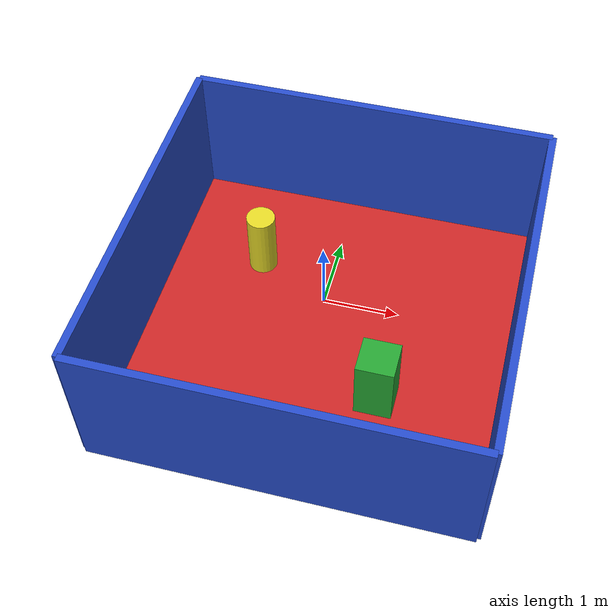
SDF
<?xml version='1.0'?>
<sdf version='1.7'>
  <model name='gazebo'>
    <link name='link_0'>
      <inertial>
        <mass>0</mass>
        <inertia>
          <ixx>0</ixx>
          <ixy>0</ixy>
          <ixz>0</ixz>
          <iyy>0</iyy>
          <iyz>0</iyz>
          <izz>0</izz>
        </inertia>
        <pose>0 0 0 0 -0 0</pose>
      </inertial>
      <pose>0.042857 -0.014286 -0.692857 0 -0 0</pose>
      <gravity>0</gravity>
      <self_collide>0</self_collide>
      <kinematic>0</kinematic>
      <enable_wind>0</enable_wind>
      <visual name='visual'>
        <pose>0 0 0 0 -0 0</pose>
        <geometry>
          <box>
            <size>5 5 0.05</size>
          </box>
        </geometry>
        <material>
          <lighting>0</lighting>
          <script>
            <uri>file://media/materials/scripts/gazebo.material</uri>
            <name>Gazebo/Red</name>
          </script>
          <shader type='pixel'>
            <normal_map>__default__</normal_map>
          </shader>
          <ambient>0.3 0.3 0.3 1</ambient>
          <diffuse>0.7 0.7 0.7 1</diffuse>
          <specular>0.01 0.01 0.01 1</specular>
          <emissive>0 0 0 1</emissive>
        </material>
        <transparency>0</transparency>
        <cast_shadows>1</cast_shadows>
      </visual>
      <collision name='collision'>
        <laser_retro>0</laser_retro>
        <max_contacts>10</max_contacts>
        <pose>0 0 0 0 -0 0</pose>
        <geometry>
          <box>
            <size>5 5 0.05</size>
          </box>
        </geometry>
        <surface>
          <friction>
            <ode>
              <mu>1</mu>
              <mu2>1</mu2>
              <fdir1>0 0 0</fdir1>
              <slip1>0</slip1>
              <slip2>0</slip2>
            </ode>
            <torsional>
              <coefficient>1</coefficient>
              <patch_radius>0</patch_radius>
              <surface_radius>0</surface_radius>
              <use_patch_radius>1</use_patch_radius>
              <ode>
                <slip>0</slip>
              </ode>
            </torsional>
          </friction>
          <bounce>
            <restitution_coefficient>0</restitution_coefficient>
            <threshold>1e+06</threshold>
          </bounce>
          <contact>
            <collide_without_contact>0</collide_without_contact>
            <collide_without_contact_bitmask>1</collide_without_contact_bitmask>
            <collide_bitmask>1</collide_bitmask>
            <ode>
              <soft_cfm>0</soft_cfm>
              <soft_erp>0.2</soft_erp>
              <kp>1e+13</kp>
              <kd>1</kd>
              <max_vel>0.01</max_vel>
              <min_depth>0</min_depth>
            </ode>
            <bullet>
              <split_impulse>1</split_impulse>
              <split_impulse_penetration_threshold>-0.01</split_impulse_penetration_threshold>
              <soft_cfm>0</soft_cfm>
              <soft_erp>0.2</soft_erp>
              <kp>1e+13</kp>
              <kd>1</kd>
            </bullet>
          </contact>
        </surface>
      </collision>
    </link>
    <link name='link_0_clone'>
      <inertial>
        <mass>0</mass>
        <inertia>
          <ixx>0</ixx>
          <ixy>0</ixy>
          <ixz>0</ixz>
          <iyy>0</iyy>
          <iyz>0</iyz>
          <izz>0</izz>
        </inertia>
        <pose>0 0 0 0 -0 0</pose>
      </inertial>
      <pose>0.042857 2.48571 0.282143 0 -0 0</pose>
      <gravity>0</gravity>
      <self_collide>0</self_collide>
      <kinematic>0</kinematic>
      <enable_wind>0</enable_wind>
      <visual name='visual'>
        <pose>0 0 0 0 -0 0</pose>
        <geometry>
          <box>
            <size>5 0.1 2</size>
          </box>
        </geometry>
        <material>
          <lighting>1</lighting>
          <script>
            <uri>file://media/materials/scripts/gazebo.material</uri>
            <name>Gazebo/Blue</name>
          </script>
          <shader type='pixel'>
            <normal_map>__default__</normal_map>
          </shader>
          <ambient>0.3 0.3 0.3 1</ambient>
          <diffuse>0.7 0.7 0.7 1</diffuse>
          <specular>0.01 0.01 0.01 1</specular>
          <emissive>0 0 0 1</emissive>
        </material>
        <transparency>0</transparency>
        <cast_shadows>1</cast_shadows>
      </visual>
      <collision name='collision'>
        <laser_retro>0</laser_retro>
        <max_contacts>10</max_contacts>
        <pose>0 0 0 0 -0 0</pose>
        <geometry>
          <box>
            <size>5 0.1 2</size>
          </box>
        </geometry>
        <surface>
          <friction>
            <ode>
              <mu>1</mu>
              <mu2>1</mu2>
              <fdir1>0 0 0</fdir1>
              <slip1>0</slip1>
              <slip2>0</slip2>
            </ode>
            <torsional>
              <coefficient>1</coefficient>
              <patch_radius>0</patch_radius>
              <surface_radius>0</surface_radius>
              <use_patch_radius>1</use_patch_radius>
              <ode>
                <slip>0</slip>
              </ode>
            </torsional>
          </friction>
          <bounce>
            <restitution_coefficient>0</restitution_coefficient>
            <threshold>1e+06</threshold>
          </bounce>
          <contact>
            <collide_without_contact>0</collide_without_contact>
            <collide_without_contact_bitmask>1</collide_without_contact_bitmask>
            <collide_bitmask>1</collide_bitmask>
            <ode>
              <soft_cfm>0</soft_cfm>
              <soft_erp>0.2</soft_erp>
              <kp>1e+13</kp>
              <kd>1</kd>
              <max_vel>0.01</max_vel>
              <min_depth>0</min_depth>
            </ode>
            <bullet>
              <split_impulse>1</split_impulse>
              <split_impulse_penetration_threshold>-0.01</split_impulse_penetration_threshold>
              <soft_cfm>0</soft_cfm>
              <soft_erp>0.2</soft_erp>
              <kp>1e+13</kp>
              <kd>1</kd>
            </bullet>
          </contact>
        </surface>
      </collision>
    </link>
    <link name='link_0_clone_clone'>
      <inertial>
        <mass>0</mass>
        <inertia>
          <ixx>0</ixx>
          <ixy>0</ixy>
          <ixz>0</ixz>
          <iyy>0</iyy>
          <iyz>0</iyz>
          <izz>0</izz>
        </inertia>
        <pose>0 0 0 0 -0 0</pose>
      </inertial>
      <pose>0.042857 -2.51429 0.282143 0 -0 0</pose>
      <gravity>1</gravity>
      <self_collide>0</self_collide>
      <kinematic>0</kinematic>
      <enable_wind>0</enable_wind>
      <visual name='visual'>
        <pose>0 0 0 0 -0 0</pose>
        <geometry>
          <box>
            <size>5 0.1 2</size>
          </box>
        </geometry>
        <material>
          <lighting>1</lighting>
          <script>
            <uri>file://media/materials/scripts/gazebo.material</uri>
            <name>Gazebo/Blue</name>
          </script>
          <shader type='pixel'>
            <normal_map>__default__</normal_map>
          </shader>
          <ambient>0.3 0.3 0.3 1</ambient>
          <diffuse>0.7 0.7 0.7 1</diffuse>
          <specular>0.01 0.01 0.01 1</specular>
          <emissive>0 0 0 1</emissive>
        </material>
        <transparency>0</transparency>
        <cast_shadows>1</cast_shadows>
      </visual>
      <collision name='collision'>
        <laser_retro>0</laser_retro>
        <max_contacts>10</max_contacts>
        <pose>0 0 0 0 -0 0</pose>
        <geometry>
          <box>
            <size>5 0.1 2</size>
          </box>
        </geometry>
        <surface>
          <friction>
            <ode>
              <mu>1</mu>
              <mu2>1</mu2>
              <fdir1>0 0 0</fdir1>
              <slip1>0</slip1>
              <slip2>0</slip2>
            </ode>
            <torsional>
              <coefficient>1</coefficient>
              <patch_radius>0</patch_radius>
              <surface_radius>0</surface_radius>
              <use_patch_radius>1</use_patch_radius>
              <ode>
                <slip>0</slip>
              </ode>
            </torsional>
          </friction>
          <bounce>
            <restitution_coefficient>0</restitution_coefficient>
            <threshold>1e+06</threshold>
          </bounce>
          <contact>
            <collide_without_contact>0</collide_without_contact>
            <collide_without_contact_bitmask>1</collide_without_contact_bitmask>
            <collide_bitmask>1</collide_bitmask>
            <ode>
              <soft_cfm>0</soft_cfm>
              <soft_erp>0.2</soft_erp>
              <kp>1e+13</kp>
              <kd>1</kd>
              <max_vel>0.01</max_vel>
              <min_depth>0</min_depth>
            </ode>
            <bullet>
              <split_impulse>1</split_impulse>
              <split_impulse_penetration_threshold>-0.01</split_impulse_penetration_threshold>
              <soft_cfm>0</soft_cfm>
              <soft_erp>0.2</soft_erp>
              <kp>1e+13</kp>
              <kd>1</kd>
            </bullet>
          </contact>
        </surface>
      </collision>
    </link>
    <link name='link_0_clone_clone_0'>
      <inertial>
        <mass>0</mass>
        <inertia>
          <ixx>0</ixx>
          <ixy>0</ixy>
          <ixz>0</ixz>
          <iyy>0</iyy>
          <iyz>0</iyz>
          <izz>0</izz>
        </inertia>
        <pose>0 0 0 0 -0 0</pose>
      </inertial>
      <pose>2.54286 -0.014286 0.282143 0 -0 1.57</pose>
      <gravity>1</gravity>
      <self_collide>0</self_collide>
      <kinematic>0</kinematic>
      <enable_wind>0</enable_wind>
      <visual name='visual'>
        <pose>0 0 0 0 -0 0</pose>
        <geometry>
          <box>
            <size>5 0.1 2</size>
          </box>
        </geometry>
        <material>
          <lighting>1</lighting>
          <script>
            <uri>file://media/materials/scripts/gazebo.material</uri>
            <name>Gazebo/Blue</name>
          </script>
          <shader type='pixel'>
            <normal_map>__default__</normal_map>
          </shader>
          <ambient>0.3 0.3 0.3 1</ambient>
          <diffuse>0.7 0.7 0.7 1</diffuse>
          <specular>0.01 0.01 0.01 1</specular>
          <emissive>0 0 0 1</emissive>
        </material>
        <transparency>0</transparency>
        <cast_shadows>1</cast_shadows>
      </visual>
      <collision name='collision'>
        <laser_retro>0</laser_retro>
        <max_contacts>10</max_contacts>
        <pose>0 0 0 0 -0 0</pose>
        <geometry>
          <box>
            <size>5 0.1 2</size>
          </box>
        </geometry>
        <surface>
          <friction>
            <ode>
              <mu>1</mu>
              <mu2>1</mu2>
              <fdir1>0 0 0</fdir1>
              <slip1>0</slip1>
              <slip2>0</slip2>
            </ode>
            <torsional>
              <coefficient>1</coefficient>
              <patch_radius>0</patch_radius>
              <surface_radius>0</surface_radius>
              <use_patch_radius>1</use_patch_radius>
              <ode>
                <slip>0</slip>
              </ode>
            </torsional>
          </friction>
          <bounce>
            <restitution_coefficient>0</restitution_coefficient>
            <threshold>1e+06</threshold>
          </bounce>
          <contact>
            <collide_without_contact>0</collide_without_contact>
            <collide_without_contact_bitmask>1</collide_without_contact_bitmask>
            <collide_bitmask>1</collide_bitmask>
            <ode>
              <soft_cfm>0</soft_cfm>
              <soft_erp>0.2</soft_erp>
              <kp>1e+13</kp>
              <kd>1</kd>
              <max_vel>0.01</max_vel>
              <min_depth>0</min_depth>
            </ode>
            <bullet>
              <split_impulse>1</split_impulse>
              <split_impulse_penetration_threshold>-0.01</split_impulse_penetration_threshold>
              <soft_cfm>0</soft_cfm>
              <soft_erp>0.2</soft_erp>
              <kp>1e+13</kp>
              <kd>1</kd>
            </bullet>
          </contact>
        </surface>
      </collision>
    </link>
    <link name='link_0_clone_clone_0_clone'>
      <inertial>
        <mass>0</mass>
        <inertia>
          <ixx>0</ixx>
          <ixy>0</ixy>
          <ixz>0</ixz>
          <iyy>0</iyy>
          <iyz>0</iyz>
          <izz>0</izz>
        </inertia>
        <pose>0 0 0 0 -0 0</pose>
      </inertial>
      <pose>-2.45714 -0.014286 0.282143 0 -0 1.57</pose>
      <gravity>1</gravity>
      <self_collide>0</self_collide>
      <kinematic>0</kinematic>
      <enable_wind>0</enable_wind>
      <visual name='visual'>
        <pose>0 0 0 0 -0 0</pose>
        <geometry>
          <box>
            <size>5 0.1 2</size>
          </box>
        </geometry>
        <material>
          <lighting>1</lighting>
          <script>
            <uri>file://media/materials/scripts/gazebo.material</uri>
            <name>Gazebo/Blue</name>
          </script>
          <shader type='pixel'>
            <normal_map>__default__</normal_map>
          </shader>
          <ambient>0.3 0.3 0.3 1</ambient>
          <diffuse>0.7 0.7 0.7 1</diffuse>
          <specular>0.01 0.01 0.01 1</specular>
          <emissive>0 0 0 1</emissive>
        </material>
        <transparency>0</transparency>
        <cast_shadows>1</cast_shadows>
      </visual>
      <collision name='collision'>
        <laser_retro>0</laser_retro>
        <max_contacts>10</max_contacts>
        <pose>0 0 0 0 -0 0</pose>
        <geometry>
          <box>
            <size>5 0.1 2</size>
          </box>
        </geometry>
        <surface>
          <friction>
            <ode>
              <mu>1</mu>
              <mu2>1</mu2>
              <fdir1>0 0 0</fdir1>
              <slip1>0</slip1>
              <slip2>0</slip2>
            </ode>
            <torsional>
              <coefficient>1</coefficient>
              <patch_radius>0</patch_radius>
              <surface_radius>0</surface_radius>
              <use_patch_radius>1</use_patch_radius>
              <ode>
                <slip>0</slip>
              </ode>
            </torsional>
          </friction>
          <bounce>
            <restitution_coefficient>0</restitution_coefficient>
            <threshold>1e+06</threshold>
          </bounce>
          <contact>
            <collide_without_contact>0</collide_without_contact>
            <collide_without_contact_bitmask>1</collide_without_contact_bitmask>
            <collide_bitmask>1</collide_bitmask>
            <ode>
              <soft_cfm>0</soft_cfm>
              <soft_erp>0.2</soft_erp>
              <kp>1e+13</kp>
              <kd>1</kd>
              <max_vel>0.01</max_vel>
              <min_depth>0</min_depth>
            </ode>
            <bullet>
              <split_impulse>1</split_impulse>
              <split_impulse_penetration_threshold>-0.01</split_impulse_penetration_threshold>
              <soft_cfm>0</soft_cfm>
              <soft_erp>0.2</soft_erp>
              <kp>1e+13</kp>
              <kd>1</kd>
            </bullet>
          </contact>
        </surface>
      </collision>
    </link>
    <link name='link_2'>
      <inertial>
        <mass>0</mass>
        <inertia>
          <ixx>0</ixx>
          <ixy>0</ixy>
          <ixz>0</ixz>
          <iyy>0</iyy>
          <iyz>0</iyz>
          <izz>0</izz>
        </inertia>
        <pose>0 0 0 0 -0 0</pose>
      </inertial>
      <pose>-1.15714 0.985714 -0.217857 0 -0 0</pose>
      <gravity>0</gravity>
      <self_collide>0</self_collide>
      <kinematic>0</kinematic>
      <enable_wind>0</enable_wind>
      <visual name='visual'>
        <pose>0 0 0 0 -0 0</pose>
        <geometry>
          <cylinder>
            <radius>0.2</radius>
            <length>1</length>
          </cylinder>
        </geometry>
        <material>
          <lighting>1</lighting>
          <script>
            <uri>file://media/materials/scripts/gazebo.material</uri>
            <name>Gazebo/Yellow</name>
          </script>
          <shader type='pixel'>
            <normal_map>__default__</normal_map>
          </shader>
          <ambient>0.3 0.3 0.3 1</ambient>
          <diffuse>0.7 0.7 0.7 1</diffuse>
          <specular>0.01 0.01 0.01 1</specular>
          <emissive>0 0 0 1</emissive>
        </material>
        <transparency>0</transparency>
        <cast_shadows>1</cast_shadows>
      </visual>
      <collision name='collision'>
        <laser_retro>0</laser_retro>
        <max_contacts>10</max_contacts>
        <pose>0 0 0 0 -0 0</pose>
        <geometry>
          <cylinder>
            <radius>0.2</radius>
            <length>1</length>
          </cylinder>
        </geometry>
        <surface>
          <friction>
            <ode>
              <mu>1</mu>
              <mu2>1</mu2>
              <fdir1>0 0 0</fdir1>
              <slip1>0</slip1>
              <slip2>0</slip2>
            </ode>
            <torsional>
              <coefficient>1</coefficient>
              <patch_radius>0</patch_radius>
              <surface_radius>0</surface_radius>
              <use_patch_radius>1</use_patch_radius>
              <ode>
                <slip>0</slip>
              </ode>
            </torsional>
          </friction>
          <bounce>
            <restitution_coefficient>0</restitution_coefficient>
            <threshold>1e+06</threshold>
          </bounce>
          <contact>
            <collide_without_contact>0</collide_without_contact>
            <collide_without_contact_bitmask>1</collide_without_contact_bitmask>
            <collide_bitmask>1</collide_bitmask>
            <ode>
              <soft_cfm>0</soft_cfm>
              <soft_erp>0.2</soft_erp>
              <kp>1e+13</kp>
              <kd>1</kd>
              <max_vel>0.01</max_vel>
              <min_depth>0</min_depth>
            </ode>
            <bullet>
              <split_impulse>1</split_impulse>
              <split_impulse_penetration_threshold>-0.01</split_impulse_penetration_threshold>
              <soft_cfm>0</soft_cfm>
              <soft_erp>0.2</soft_erp>
              <kp>1e+13</kp>
              <kd>1</kd>
            </bullet>
          </contact>
        </surface>
      </collision>
    </link>
    <link name='link_4'>
      <inertial>
        <mass>0</mass>
        <inertia>
          <ixx>0</ixx>
          <ixy>0</ixy>
          <ixz>0</ixz>
          <iyy>0</iyy>
          <iyz>0</iyz>
          <izz>0</izz>
        </inertia>
        <pose>0 0 0 0 -0 0</pose>
      </inertial>
      <pose>0.942857 -0.914286 -0.217857 0 -0 0</pose>
      <gravity>0</gravity>
      <self_collide>0</self_collide>
      <kinematic>0</kinematic>
      <enable_wind>0</enable_wind>
      <visual name='visual'>
        <pose>0 0 0 0 -0 0</pose>
        <geometry>
          <box>
            <size>0.5 0.5 1</size>
          </box>
        </geometry>
        <material>
          <lighting>1</lighting>
          <script>
            <uri>file://media/materials/scripts/gazebo.material</uri>
            <name>Gazebo/Green</name>
          </script>
          <shader type='pixel'>
            <normal_map>__default__</normal_map>
          </shader>
          <ambient>0.3 0.3 0.3 1</ambient>
          <diffuse>0.7 0.7 0.7 1</diffuse>
          <specular>0.01 0.01 0.01 1</specular>
          <emissive>0 0 0 1</emissive>
        </material>
        <transparency>0</transparency>
        <cast_shadows>1</cast_shadows>
      </visual>
      <collision name='collision'>
        <laser_retro>0</laser_retro>
        <max_contacts>10</max_contacts>
        <pose>0 0 0 0 -0 0</pose>
        <geometry>
          <box>
            <size>0.5 0.5 0.5</size>
          </box>
        </geometry>
        <surface>
          <friction>
            <ode>
              <mu>1</mu>
              <mu2>1</mu2>
              <fdir1>0 0 0</fdir1>
              <slip1>0</slip1>
              <slip2>0</slip2>
            </ode>
            <torsional>
              <coefficient>1</coefficient>
              <patch_radius>0</patch_radius>
              <surface_radius>0</surface_radius>
              <use_patch_radius>1</use_patch_radius>
              <ode>
                <slip>0</slip>
              </ode>
            </torsional>
          </friction>
          <bounce>
            <restitution_coefficient>0</restitution_coefficient>
            <threshold>1e+06</threshold>
          </bounce>
          <contact>
            <collide_without_contact>0</collide_without_contact>
            <collide_without_contact_bitmask>1</collide_without_contact_bitmask>
            <collide_bitmask>1</collide_bitmask>
            <ode>
              <soft_cfm>0</soft_cfm>
              <soft_erp>0.2</soft_erp>
              <kp>1e+13</kp>
              <kd>1</kd>
              <max_vel>0.01</max_vel>
              <min_depth>0</min_depth>
            </ode>
            <bullet>
              <split_impulse>1</split_impulse>
              <split_impulse_penetration_threshold>-0.01</split_impulse_penetration_threshold>
              <soft_cfm>0</soft_cfm>
              <soft_erp>0.2</soft_erp>
              <kp>1e+13</kp>
              <kd>1</kd>
            </bullet>
          </contact>
        </surface>
      </collision>
    </link>
    <joint name='link_0_JOINT_0' type='fixed'>
      <parent>link_0</parent>
      <child>link_0_clone</child>
      <pose>0 0 0 0 -0 0</pose>
      <physics>
        <ode>
          <limit>
            <cfm>0</cfm>
            <erp>0.2</erp>
          </limit>
          <suspension>
            <cfm>0</cfm>
            <erp>0.2</erp>
          </suspension>
        </ode>
      </physics>
    </joint>
    <joint name='link_0_JOINT_1' type='fixed'>
      <parent>link_0</parent>
      <child>link_0_clone_clone</child>
      <pose>0 0 0 0 -0 0</pose>
      <physics>
        <ode>
          <limit>
            <cfm>0</cfm>
            <erp>0.2</erp>
          </limit>
          <suspension>
            <cfm>0</cfm>
            <erp>0.2</erp>
          </suspension>
        </ode>
      </physics>
    </joint>
    <joint name='link_0_JOINT_3' type='fixed'>
      <parent>link_0</parent>
      <child>link_0_clone_clone_0</child>
      <pose>0 0 0 0 -0 0</pose>
      <physics>
        <ode>
          <limit>
            <cfm>0</cfm>
            <erp>0.2</erp>
          </limit>
          <suspension>
            <cfm>0</cfm>
            <erp>0.2</erp>
          </suspension>
        </ode>
      </physics>
    </joint>
    <joint name='link_0_JOINT_4' type='fixed'>
      <parent>link_0</parent>
      <child>link_0_clone_clone_0_clone</child>
      <pose>0 0 0 0 -0 0</pose>
      <physics>
        <ode>
          <limit>
            <cfm>0</cfm>
            <erp>0.2</erp>
          </limit>
          <suspension>
            <cfm>0</cfm>
            <erp>0.2</erp>
          </suspension>
        </ode>
      </physics>
    </joint>
    <joint name='link_0_JOINT_5' type='fixed'>
      <parent>link_0</parent>
      <child>link_2</child>
      <pose>0 0 0 0 -0 0</pose>
      <physics>
        <ode>
          <limit>
            <cfm>0</cfm>
            <erp>0.2</erp>
          </limit>
          <suspension>
            <cfm>0</cfm>
            <erp>0.2</erp>
          </suspension>
        </ode>
      </physics>
    </joint>
    <joint name='link_0_JOINT_6' type='fixed'>
      <parent>link_0</parent>
      <child>link_4</child>
      <pose>0 0 0 0 -0 0</pose>
      <physics>
        <ode>
          <limit>
            <cfm>0</cfm>
            <erp>0.2</erp>
          </limit>
          <suspension>
            <cfm>0</cfm>
            <erp>0.2</erp>
          </suspension>
        </ode>
      </physics>
    </joint>
    <static>0</static>
    <allow_auto_disable>1</allow_auto_disable>
  </model>
</sdf>
